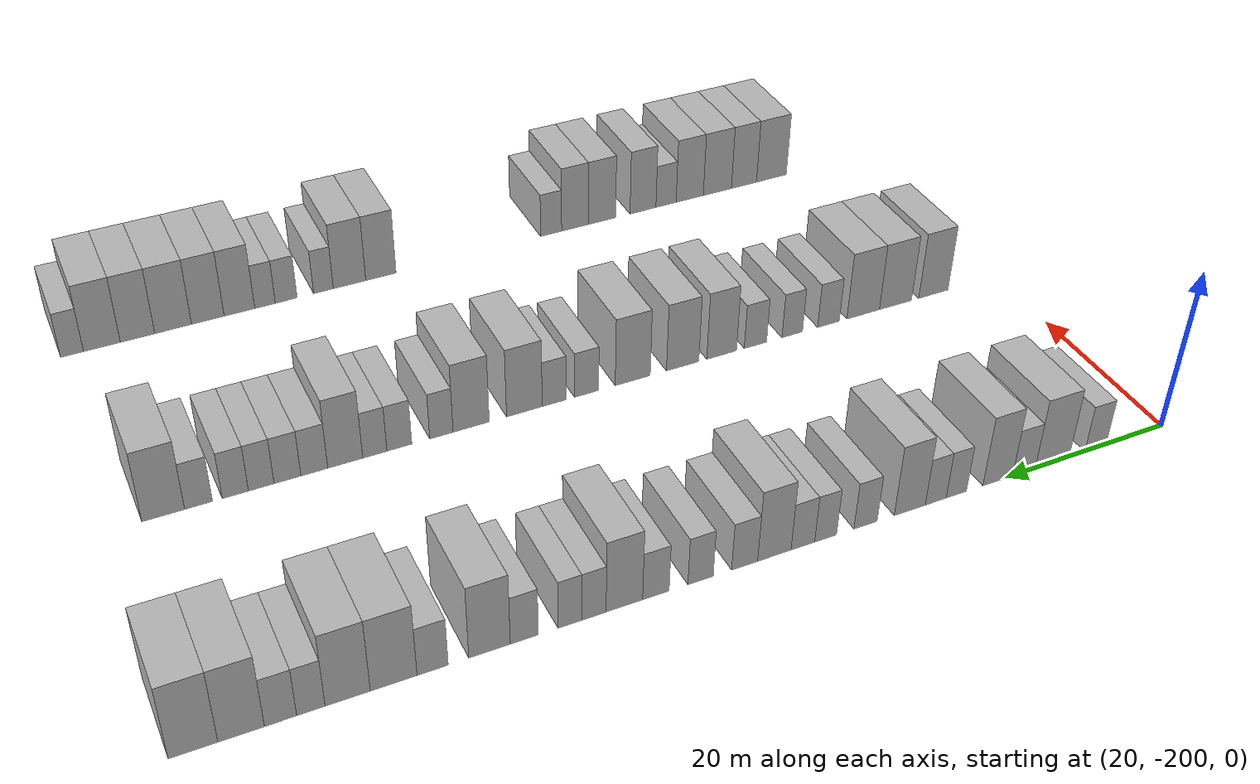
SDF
<sdf version="1.6">
 <world name="default">
  <model name="building_24">
   <static>1</static>
   <pose>25.0000 -191.3741 0 0.000000 0.000000 0.000000</pose>
   <link name="link">
    <pose>0 0 3.00 0 0 0</pose>
    <collision name="collision"><geometry><box><size>10.0000 2.7323 6.0000</size></box></geometry></collision>
    <visual name="visual">
     <cast_shadows>0</cast_shadows>
     <geometry><box><size>10.0000 2.7323 6.0000</size></box></geometry>
     <material>
      <script>
       <uri>model://HANNAS_wall/materials/scripts</uri>
       <uri>model://HANNAS_wall/materials/textures</uri>
       <name>vrc/HANNAS_wall</name>
      </script>
     </material>
    </visual>
   </link>
  </model>
  <model name="building_25">
   <static>1</static>
   <pose>25.0000 -185.8586 0 0.000000 0.000000 0.000000</pose>
   <link name="link">
    <pose>0 0 4.50 0 0 0</pose>
    <collision name="collision"><geometry><box><size>10.0000 4.2987 9.0000</size></box></geometry></collision>
    <visual name="visual">
     <cast_shadows>0</cast_shadows>
     <geometry><box><size>10.0000 4.2987 9.0000</size></box></geometry>
     <material>
      <script>
       <uri>model://HANNAS_wall/materials/scripts</uri>
       <uri>model://HANNAS_wall/materials/textures</uri>
       <name>vrc/HANNAS_wall</name>
      </script>
     </material>
    </visual>
   </link>
  </model>
  <model name="building_26">
   <static>1</static>
   <pose>25.0000 -182.3043 0 0.000000 0.000000 0.000000</pose>
   <link name="link">
    <pose>0 0 3.00 0 0 0</pose>
    <collision name="collision"><geometry><box><size>10.0000 2.8098 6.0000</size></box></geometry></collision>
    <visual name="visual">
     <cast_shadows>0</cast_shadows>
     <geometry><box><size>10.0000 2.8098 6.0000</size></box></geometry>
     <material>
      <script>
       <uri>model://HANNAS_wall/materials/scripts</uri>
       <uri>model://HANNAS_wall/materials/textures</uri>
       <name>vrc/HANNAS_wall</name>
      </script>
     </material>
    </visual>
   </link>
  </model>
  <model name="building_27">
   <static>1</static>
   <pose>25.0000 -179.0674 0 0.000000 0.000000 0.000000</pose>
   <link name="link">
    <pose>0 0 4.50 0 0 0</pose>
    <collision name="collision"><geometry><box><size>10.0000 3.6641 9.0000</size></box></geometry></collision>
    <visual name="visual">
     <cast_shadows>0</cast_shadows>
     <geometry><box><size>10.0000 3.6641 9.0000</size></box></geometry>
     <material>
      <script>
       <uri>model://HANNAS_wall/materials/scripts</uri>
       <uri>model://HANNAS_wall/materials/textures</uri>
       <name>vrc/HANNAS_wall</name>
      </script>
     </material>
    </visual>
   </link>
  </model>
  <model name="building_28">
   <static>1</static>
   <pose>25.0000 -174.0113 0 0.000000 0.000000 0.000000</pose>
   <link name="link">
    <pose>0 0 3.00 0 0 0</pose>
    <collision name="collision"><geometry><box><size>10.0000 2.4480 6.0000</size></box></geometry></collision>
    <visual name="visual">
     <cast_shadows>0</cast_shadows>
     <geometry><box><size>10.0000 2.4480 6.0000</size></box></geometry>
     <material>
      <script>
       <uri>model://HANNAS_wall/materials/scripts</uri>
       <uri>model://HANNAS_wall/materials/textures</uri>
       <name>vrc/HANNAS_wall</name>
      </script>
     </material>
    </visual>
   </link>
  </model>
  <model name="building_29">
   <static>1</static>
   <pose>25.0000 -171.5381 0 0.000000 0.000000 0.000000</pose>
   <link name="link">
    <pose>0 0 3.00 0 0 0</pose>
    <collision name="collision"><geometry><box><size>10.0000 2.4984 6.0000</size></box></geometry></collision>
    <visual name="visual">
     <cast_shadows>0</cast_shadows>
     <geometry><box><size>10.0000 2.4984 6.0000</size></box></geometry>
     <material>
      <script>
       <uri>model://HANNAS_wall/materials/scripts</uri>
       <uri>model://HANNAS_wall/materials/textures</uri>
       <name>vrc/HANNAS_wall</name>
      </script>
     </material>
    </visual>
   </link>
  </model>
  <model name="building_30">
   <static>1</static>
   <pose>25.0000 -168.4540 0 0.000000 0.000000 0.000000</pose>
   <link name="link">
    <pose>0 0 4.50 0 0 0</pose>
    <collision name="collision"><geometry><box><size>10.0000 3.6698 9.0000</size></box></geometry></collision>
    <visual name="visual">
     <cast_shadows>0</cast_shadows>
     <geometry><box><size>10.0000 3.6698 9.0000</size></box></geometry>
     <material>
      <script>
       <uri>model://HANNAS_wall/materials/scripts</uri>
       <uri>model://HANNAS_wall/materials/textures</uri>
       <name>vrc/HANNAS_wall</name>
      </script>
     </material>
    </visual>
   </link>
  </model>
  <model name="building_31">
   <static>1</static>
   <pose>25.0000 -163.2744 0 0.000000 0.000000 0.000000</pose>
   <link name="link">
    <pose>0 0 3.00 0 0 0</pose>
    <collision name="collision"><geometry><box><size>10.0000 2.6895 6.0000</size></box></geometry></collision>
    <visual name="visual">
     <cast_shadows>0</cast_shadows>
     <geometry><box><size>10.0000 2.6895 6.0000</size></box></geometry>
     <material>
      <script>
       <uri>model://HANNAS_wall/materials/scripts</uri>
       <uri>model://HANNAS_wall/materials/textures</uri>
       <name>vrc/HANNAS_wall</name>
      </script>
     </material>
    </visual>
   </link>
  </model>
  <model name="building_32">
   <static>1</static>
   <pose>25.0000 -158.6864 0 0.000000 0.000000 0.000000</pose>
   <link name="link">
    <pose>0 0 3.00 0 0 0</pose>
    <collision name="collision"><geometry><box><size>10.0000 2.4863 6.0000</size></box></geometry></collision>
    <visual name="visual">
     <cast_shadows>0</cast_shadows>
     <geometry><box><size>10.0000 2.4863 6.0000</size></box></geometry>
     <material>
      <script>
       <uri>model://HANNAS_wall/materials/scripts</uri>
       <uri>model://HANNAS_wall/materials/textures</uri>
       <name>vrc/HANNAS_wall</name>
      </script>
     </material>
    </visual>
   </link>
  </model>
  <model name="building_33">
   <static>1</static>
   <pose>25.0000 -156.1100 0 0.000000 0.000000 0.000000</pose>
   <link name="link">
    <pose>0 0 3.00 0 0 0</pose>
    <collision name="collision"><geometry><box><size>10.0000 2.6665 6.0000</size></box></geometry></collision>
    <visual name="visual">
     <cast_shadows>0</cast_shadows>
     <geometry><box><size>10.0000 2.6665 6.0000</size></box></geometry>
     <material>
      <script>
       <uri>model://HANNAS_wall/materials/scripts</uri>
       <uri>model://HANNAS_wall/materials/textures</uri>
       <name>vrc/HANNAS_wall</name>
      </script>
     </material>
    </visual>
   </link>
  </model>
  <model name="building_34">
   <static>1</static>
   <pose>25.0000 -152.9184 0 0.000000 0.000000 0.000000</pose>
   <link name="link">
    <pose>0 0 4.50 0 0 0</pose>
    <collision name="collision"><geometry><box><size>10.0000 3.7168 9.0000</size></box></geometry></collision>
    <visual name="visual">
     <cast_shadows>0</cast_shadows>
     <geometry><box><size>10.0000 3.7168 9.0000</size></box></geometry>
     <material>
      <script>
       <uri>model://HANNAS_wall/materials/scripts</uri>
       <uri>model://HANNAS_wall/materials/textures</uri>
       <name>vrc/HANNAS_wall</name>
      </script>
     </material>
    </visual>
   </link>
  </model>
  <model name="building_35">
   <static>1</static>
   <pose>25.0000 -149.6319 0 0.000000 0.000000 0.000000</pose>
   <link name="link">
    <pose>0 0 3.00 0 0 0</pose>
    <collision name="collision"><geometry><box><size>10.0000 2.8561 6.0000</size></box></geometry></collision>
    <visual name="visual">
     <cast_shadows>0</cast_shadows>
     <geometry><box><size>10.0000 2.8561 6.0000</size></box></geometry>
     <material>
      <script>
       <uri>model://HANNAS_wall/materials/scripts</uri>
       <uri>model://HANNAS_wall/materials/textures</uri>
       <name>vrc/HANNAS_wall</name>
      </script>
     </material>
    </visual>
   </link>
  </model>
  <model name="building_36">
   <static>1</static>
   <pose>25.0000 -144.8360 0 0.000000 0.000000 0.000000</pose>
   <link name="link">
    <pose>0 0 3.00 0 0 0</pose>
    <collision name="collision"><geometry><box><size>10.0000 2.7358 6.0000</size></box></geometry></collision>
    <visual name="visual">
     <cast_shadows>0</cast_shadows>
     <geometry><box><size>10.0000 2.7358 6.0000</size></box></geometry>
     <material>
      <script>
       <uri>model://HANNAS_wall/materials/scripts</uri>
       <uri>model://HANNAS_wall/materials/textures</uri>
       <name>vrc/HANNAS_wall</name>
      </script>
     </material>
    </visual>
   </link>
  </model>
  <model name="building_37">
   <static>1</static>
   <pose>25.0000 -140.0680 0 0.000000 0.000000 0.000000</pose>
   <link name="link">
    <pose>0 0 3.00 0 0 0</pose>
    <collision name="collision"><geometry><box><size>10.0000 2.8001 6.0000</size></box></geometry></collision>
    <visual name="visual">
     <cast_shadows>0</cast_shadows>
     <geometry><box><size>10.0000 2.8001 6.0000</size></box></geometry>
     <material>
      <script>
       <uri>model://HANNAS_wall/materials/scripts</uri>
       <uri>model://HANNAS_wall/materials/textures</uri>
       <name>vrc/HANNAS_wall</name>
      </script>
     </material>
    </visual>
   </link>
  </model>
  <model name="building_38">
   <static>1</static>
   <pose>25.0000 -136.7631 0 0.000000 0.000000 0.000000</pose>
   <link name="link">
    <pose>0 0 4.50 0 0 0</pose>
    <collision name="collision"><geometry><box><size>10.0000 3.8097 9.0000</size></box></geometry></collision>
    <visual name="visual">
     <cast_shadows>0</cast_shadows>
     <geometry><box><size>10.0000 3.8097 9.0000</size></box></geometry>
     <material>
      <script>
       <uri>model://HANNAS_wall/materials/scripts</uri>
       <uri>model://HANNAS_wall/materials/textures</uri>
       <name>vrc/HANNAS_wall</name>
      </script>
     </material>
    </visual>
   </link>
  </model>
  <model name="building_39">
   <static>1</static>
   <pose>25.0000 -133.6153 0 0.000000 0.000000 0.000000</pose>
   <link name="link">
    <pose>0 0 3.00 0 0 0</pose>
    <collision name="collision"><geometry><box><size>10.0000 2.4858 6.0000</size></box></geometry></collision>
    <visual name="visual">
     <cast_shadows>0</cast_shadows>
     <geometry><box><size>10.0000 2.4858 6.0000</size></box></geometry>
     <material>
      <script>
       <uri>model://HANNAS_wall/materials/scripts</uri>
       <uri>model://HANNAS_wall/materials/textures</uri>
       <name>vrc/HANNAS_wall</name>
      </script>
     </material>
    </visual>
   </link>
  </model>
  <model name="building_40">
   <static>1</static>
   <pose>25.0000 -131.1574 0 0.000000 0.000000 0.000000</pose>
   <link name="link">
    <pose>0 0 3.00 0 0 0</pose>
    <collision name="collision"><geometry><box><size>10.0000 2.4301 6.0000</size></box></geometry></collision>
    <visual name="visual">
     <cast_shadows>0</cast_shadows>
     <geometry><box><size>10.0000 2.4301 6.0000</size></box></geometry>
     <material>
      <script>
       <uri>model://HANNAS_wall/materials/scripts</uri>
       <uri>model://HANNAS_wall/materials/textures</uri>
       <name>vrc/HANNAS_wall</name>
      </script>
     </material>
    </visual>
   </link>
  </model>
  <model name="building_41">
   <static>1</static>
   <pose>25.0000 -126.5454 0 0.000000 0.000000 0.000000</pose>
   <link name="link">
    <pose>0 0 3.00 0 0 0</pose>
    <collision name="collision"><geometry><box><size>10.0000 2.7939 6.0000</size></box></geometry></collision>
    <visual name="visual">
     <cast_shadows>0</cast_shadows>
     <geometry><box><size>10.0000 2.7939 6.0000</size></box></geometry>
     <material>
      <script>
       <uri>model://HANNAS_wall/materials/scripts</uri>
       <uri>model://HANNAS_wall/materials/textures</uri>
       <name>vrc/HANNAS_wall</name>
      </script>
     </material>
    </visual>
   </link>
  </model>
  <model name="building_42">
   <static>1</static>
   <pose>25.0000 -123.1025 0 0.000000 0.000000 0.000000</pose>
   <link name="link">
    <pose>0 0 4.50 0 0 0</pose>
    <collision name="collision"><geometry><box><size>10.0000 4.0917 9.0000</size></box></geometry></collision>
    <visual name="visual">
     <cast_shadows>0</cast_shadows>
     <geometry><box><size>10.0000 4.0917 9.0000</size></box></geometry>
     <material>
      <script>
       <uri>model://HANNAS_wall/materials/scripts</uri>
       <uri>model://HANNAS_wall/materials/textures</uri>
       <name>vrc/HANNAS_wall</name>
      </script>
     </material>
    </visual>
   </link>
  </model>
  <model name="building_43">
   <static>1</static>
   <pose>25.0000 -117.5571 0 0.000000 0.000000 0.000000</pose>
   <link name="link">
    <pose>0 0 3.00 0 0 0</pose>
    <collision name="collision"><geometry><box><size>10.0000 2.9992 6.0000</size></box></geometry></collision>
    <visual name="visual">
     <cast_shadows>0</cast_shadows>
     <geometry><box><size>10.0000 2.9992 6.0000</size></box></geometry>
     <material>
      <script>
       <uri>model://HANNAS_wall/materials/scripts</uri>
       <uri>model://HANNAS_wall/materials/textures</uri>
       <name>vrc/HANNAS_wall</name>
      </script>
     </material>
    </visual>
   </link>
  </model>
  <model name="building_44">
   <static>1</static>
   <pose>25.0000 -113.8441 0 0.000000 0.000000 0.000000</pose>
   <link name="link">
    <pose>0 0 4.50 0 0 0</pose>
    <collision name="collision"><geometry><box><size>10.0000 4.4267 9.0000</size></box></geometry></collision>
    <visual name="visual">
     <cast_shadows>0</cast_shadows>
     <geometry><box><size>10.0000 4.4267 9.0000</size></box></geometry>
     <material>
      <script>
       <uri>model://HANNAS_wall/materials/scripts</uri>
       <uri>model://HANNAS_wall/materials/textures</uri>
       <name>vrc/HANNAS_wall</name>
      </script>
     </material>
    </visual>
   </link>
  </model>
  <model name="building_45">
   <static>1</static>
   <pose>25.0000 -109.5300 0 0.000000 0.000000 0.000000</pose>
   <link name="link">
    <pose>0 0 4.50 0 0 0</pose>
    <collision name="collision"><geometry><box><size>10.0000 4.2016 9.0000</size></box></geometry></collision>
    <visual name="visual">
     <cast_shadows>0</cast_shadows>
     <geometry><box><size>10.0000 4.2016 9.0000</size></box></geometry>
     <material>
      <script>
       <uri>model://HANNAS_wall/materials/scripts</uri>
       <uri>model://HANNAS_wall/materials/textures</uri>
       <name>vrc/HANNAS_wall</name>
      </script>
     </material>
    </visual>
   </link>
  </model>
  <model name="building_46">
   <static>1</static>
   <pose>25.0000 -106.1285 0 0.000000 0.000000 0.000000</pose>
   <link name="link">
    <pose>0 0 3.00 0 0 0</pose>
    <collision name="collision"><geometry><box><size>10.0000 2.6014 6.0000</size></box></geometry></collision>
    <visual name="visual">
     <cast_shadows>0</cast_shadows>
     <geometry><box><size>10.0000 2.6014 6.0000</size></box></geometry>
     <material>
      <script>
       <uri>model://HANNAS_wall/materials/scripts</uri>
       <uri>model://HANNAS_wall/materials/textures</uri>
       <name>vrc/HANNAS_wall</name>
      </script>
     </material>
    </visual>
   </link>
  </model>
  <model name="building_47">
   <static>1</static>
   <pose>25.0000 -103.3678 0 0.000000 0.000000 0.000000</pose>
   <link name="link">
    <pose>0 0 3.00 0 0 0</pose>
    <collision name="collision"><geometry><box><size>10.0000 2.9200 6.0000</size></box></geometry></collision>
    <visual name="visual">
     <cast_shadows>0</cast_shadows>
     <geometry><box><size>10.0000 2.9200 6.0000</size></box></geometry>
     <material>
      <script>
       <uri>model://HANNAS_wall/materials/scripts</uri>
       <uri>model://HANNAS_wall/materials/textures</uri>
       <name>vrc/HANNAS_wall</name>
      </script>
     </material>
    </visual>
   </link>
  </model>
  <model name="building_48">
   <static>1</static>
   <pose>25.0000 -99.8309 0 0.000000 0.000000 0.000000</pose>
   <link name="link">
    <pose>0 0 4.50 0 0 0</pose>
    <collision name="collision"><geometry><box><size>10.0000 4.1537 9.0000</size></box></geometry></collision>
    <visual name="visual">
     <cast_shadows>0</cast_shadows>
     <geometry><box><size>10.0000 4.1537 9.0000</size></box></geometry>
     <material>
      <script>
       <uri>model://HANNAS_wall/materials/scripts</uri>
       <uri>model://HANNAS_wall/materials/textures</uri>
       <name>vrc/HANNAS_wall</name>
      </script>
     </material>
    </visual>
   </link>
  </model>
  <model name="building_49">
   <static>1</static>
   <pose>25.0000 -95.5745 0 0.000000 0.000000 0.000000</pose>
   <link name="link">
    <pose>0 0 4.50 0 0 0</pose>
    <collision name="collision"><geometry><box><size>10.0000 4.3591 9.0000</size></box></geometry></collision>
    <visual name="visual">
     <cast_shadows>0</cast_shadows>
     <geometry><box><size>10.0000 4.3591 9.0000</size></box></geometry>
     <material>
      <script>
       <uri>model://HANNAS_wall/materials/scripts</uri>
       <uri>model://HANNAS_wall/materials/textures</uri>
       <name>vrc/HANNAS_wall</name>
      </script>
     </material>
    </visual>
   </link>
  </model>
  <model name="building_154">
   <static>1</static>
   <pose>55.0000 -191.2686 0 0.000000 0.000000 0.000000</pose>
   <link name="link">
    <pose>0 0 4.50 0 0 0</pose>
    <collision name="collision"><geometry><box><size>10.0000 4.0565 9.0000</size></box></geometry></collision>
    <visual name="visual">
     <cast_shadows>0</cast_shadows>
     <geometry><box><size>10.0000 4.0565 9.0000</size></box></geometry>
     <material>
      <script>
       <uri>model://HANNAS_wall/materials/scripts</uri>
       <uri>model://HANNAS_wall/materials/textures</uri>
       <name>vrc/HANNAS_wall</name>
      </script>
     </material>
    </visual>
   </link>
  </model>
  <model name="building_155">
   <static>1</static>
   <pose>55.0000 -186.0417 0 0.000000 0.000000 0.000000</pose>
   <link name="link">
    <pose>0 0 4.50 0 0 0</pose>
    <collision name="collision"><geometry><box><size>10.0000 4.3973 9.0000</size></box></geometry></collision>
    <visual name="visual">
     <cast_shadows>0</cast_shadows>
     <geometry><box><size>10.0000 4.3973 9.0000</size></box></geometry>
     <material>
      <script>
       <uri>model://HANNAS_wall/materials/scripts</uri>
       <uri>model://HANNAS_wall/materials/textures</uri>
       <name>vrc/HANNAS_wall</name>
      </script>
     </material>
    </visual>
   </link>
  </model>
  <model name="building_156">
   <static>1</static>
   <pose>55.0000 -181.6446 0 0.000000 0.000000 0.000000</pose>
   <link name="link">
    <pose>0 0 4.50 0 0 0</pose>
    <collision name="collision"><geometry><box><size>10.0000 4.3967 9.0000</size></box></geometry></collision>
    <visual name="visual">
     <cast_shadows>0</cast_shadows>
     <geometry><box><size>10.0000 4.3967 9.0000</size></box></geometry>
     <material>
      <script>
       <uri>model://HANNAS_wall/materials/scripts</uri>
       <uri>model://HANNAS_wall/materials/textures</uri>
       <name>vrc/HANNAS_wall</name>
      </script>
     </material>
    </visual>
   </link>
  </model>
  <model name="building_157">
   <static>1</static>
   <pose>55.0000 -177.0055 0 0.000000 0.000000 0.000000</pose>
   <link name="link">
    <pose>0 0 3.00 0 0 0</pose>
    <collision name="collision"><geometry><box><size>10.0000 2.8816 6.0000</size></box></geometry></collision>
    <visual name="visual">
     <cast_shadows>0</cast_shadows>
     <geometry><box><size>10.0000 2.8816 6.0000</size></box></geometry>
     <material>
      <script>
       <uri>model://HANNAS_wall/materials/scripts</uri>
       <uri>model://HANNAS_wall/materials/textures</uri>
       <name>vrc/HANNAS_wall</name>
      </script>
     </material>
    </visual>
   </link>
  </model>
  <model name="building_158">
   <static>1</static>
   <pose>55.0000 -172.2257 0 0.000000 0.000000 0.000000</pose>
   <link name="link">
    <pose>0 0 3.00 0 0 0</pose>
    <collision name="collision"><geometry><box><size>10.0000 2.6780 6.0000</size></box></geometry></collision>
    <visual name="visual">
     <cast_shadows>0</cast_shadows>
     <geometry><box><size>10.0000 2.6780 6.0000</size></box></geometry>
     <material>
      <script>
       <uri>model://HANNAS_wall/materials/scripts</uri>
       <uri>model://HANNAS_wall/materials/textures</uri>
       <name>vrc/HANNAS_wall</name>
      </script>
     </material>
    </visual>
   </link>
  </model>
  <model name="building_159">
   <static>1</static>
   <pose>55.0000 -167.4514 0 0.000000 0.000000 0.000000</pose>
   <link name="link">
    <pose>0 0 3.00 0 0 0</pose>
    <collision name="collision"><geometry><box><size>10.0000 2.8705 6.0000</size></box></geometry></collision>
    <visual name="visual">
     <cast_shadows>0</cast_shadows>
     <geometry><box><size>10.0000 2.8705 6.0000</size></box></geometry>
     <material>
      <script>
       <uri>model://HANNAS_wall/materials/scripts</uri>
       <uri>model://HANNAS_wall/materials/textures</uri>
       <name>vrc/HANNAS_wall</name>
      </script>
     </material>
    </visual>
   </link>
  </model>
  <model name="building_160">
   <static>1</static>
   <pose>55.0000 -163.1366 0 0.000000 0.000000 0.000000</pose>
   <link name="link">
    <pose>0 0 4.50 0 0 0</pose>
    <collision name="collision"><geometry><box><size>10.0000 3.7590 9.0000</size></box></geometry></collision>
    <visual name="visual">
     <cast_shadows>0</cast_shadows>
     <geometry><box><size>10.0000 3.7590 9.0000</size></box></geometry>
     <material>
      <script>
       <uri>model://HANNAS_wall/materials/scripts</uri>
       <uri>model://HANNAS_wall/materials/textures</uri>
       <name>vrc/HANNAS_wall</name>
      </script>
     </material>
    </visual>
   </link>
  </model>
  <model name="building_161">
   <static>1</static>
   <pose>55.0000 -158.2398 0 0.000000 0.000000 0.000000</pose>
   <link name="link">
    <pose>0 0 4.50 0 0 0</pose>
    <collision name="collision"><geometry><box><size>10.0000 4.0346 9.0000</size></box></geometry></collision>
    <visual name="visual">
     <cast_shadows>0</cast_shadows>
     <geometry><box><size>10.0000 4.0346 9.0000</size></box></geometry>
     <material>
      <script>
       <uri>model://HANNAS_wall/materials/scripts</uri>
       <uri>model://HANNAS_wall/materials/textures</uri>
       <name>vrc/HANNAS_wall</name>
      </script>
     </material>
    </visual>
   </link>
  </model>
  <model name="building_162">
   <static>1</static>
   <pose>55.0000 -152.0900 0 0.000000 0.000000 0.000000</pose>
   <link name="link">
    <pose>0 0 4.50 0 0 0</pose>
    <collision name="collision"><geometry><box><size>10.0000 4.2650 9.0000</size></box></geometry></collision>
    <visual name="visual">
     <cast_shadows>0</cast_shadows>
     <geometry><box><size>10.0000 4.2650 9.0000</size></box></geometry>
     <material>
      <script>
       <uri>model://HANNAS_wall/materials/scripts</uri>
       <uri>model://HANNAS_wall/materials/textures</uri>
       <name>vrc/HANNAS_wall</name>
      </script>
     </material>
    </visual>
   </link>
  </model>
  <model name="building_163">
   <static>1</static>
   <pose>55.0000 -146.5157 0 0.000000 0.000000 0.000000</pose>
   <link name="link">
    <pose>0 0 3.00 0 0 0</pose>
    <collision name="collision"><geometry><box><size>10.0000 2.8836 6.0000</size></box></geometry></collision>
    <visual name="visual">
     <cast_shadows>0</cast_shadows>
     <geometry><box><size>10.0000 2.8836 6.0000</size></box></geometry>
     <material>
      <script>
       <uri>model://HANNAS_wall/materials/scripts</uri>
       <uri>model://HANNAS_wall/materials/textures</uri>
       <name>vrc/HANNAS_wall</name>
      </script>
     </material>
    </visual>
   </link>
  </model>
  <model name="building_164">
   <static>1</static>
   <pose>55.0000 -142.6674 0 0.000000 0.000000 0.000000</pose>
   <link name="link">
    <pose>0 0 3.00 0 0 0</pose>
    <collision name="collision"><geometry><box><size>10.0000 2.8130 6.0000</size></box></geometry></collision>
    <visual name="visual">
     <cast_shadows>0</cast_shadows>
     <geometry><box><size>10.0000 2.8130 6.0000</size></box></geometry>
     <material>
      <script>
       <uri>model://HANNAS_wall/materials/scripts</uri>
       <uri>model://HANNAS_wall/materials/textures</uri>
       <name>vrc/HANNAS_wall</name>
      </script>
     </material>
    </visual>
   </link>
  </model>
  <model name="building_165">
   <static>1</static>
   <pose>55.0000 -139.1815 0 0.000000 0.000000 0.000000</pose>
   <link name="link">
    <pose>0 0 4.50 0 0 0</pose>
    <collision name="collision"><geometry><box><size>10.0000 4.1588 9.0000</size></box></geometry></collision>
    <visual name="visual">
     <cast_shadows>0</cast_shadows>
     <geometry><box><size>10.0000 4.1588 9.0000</size></box></geometry>
     <material>
      <script>
       <uri>model://HANNAS_wall/materials/scripts</uri>
       <uri>model://HANNAS_wall/materials/textures</uri>
       <name>vrc/HANNAS_wall</name>
      </script>
     </material>
    </visual>
   </link>
  </model>
  <model name="building_166">
   <static>1</static>
   <pose>55.0000 -133.0442 0 0.000000 0.000000 0.000000</pose>
   <link name="link">
    <pose>0 0 4.50 0 0 0</pose>
    <collision name="collision"><geometry><box><size>10.0000 4.1156 9.0000</size></box></geometry></collision>
    <visual name="visual">
     <cast_shadows>0</cast_shadows>
     <geometry><box><size>10.0000 4.1156 9.0000</size></box></geometry>
     <material>
      <script>
       <uri>model://HANNAS_wall/materials/scripts</uri>
       <uri>model://HANNAS_wall/materials/textures</uri>
       <name>vrc/HANNAS_wall</name>
      </script>
     </material>
    </visual>
   </link>
  </model>
  <model name="building_167">
   <static>1</static>
   <pose>55.0000 -129.6721 0 0.000000 0.000000 0.000000</pose>
   <link name="link">
    <pose>0 0 3.00 0 0 0</pose>
    <collision name="collision"><geometry><box><size>10.0000 2.6286 6.0000</size></box></geometry></collision>
    <visual name="visual">
     <cast_shadows>0</cast_shadows>
     <geometry><box><size>10.0000 2.6286 6.0000</size></box></geometry>
     <material>
      <script>
       <uri>model://HANNAS_wall/materials/scripts</uri>
       <uri>model://HANNAS_wall/materials/textures</uri>
       <name>vrc/HANNAS_wall</name>
      </script>
     </material>
    </visual>
   </link>
  </model>
  <model name="building_168">
   <static>1</static>
   <pose>55.0000 -124.9815 0 0.000000 0.000000 0.000000</pose>
   <link name="link">
    <pose>0 0 3.00 0 0 0</pose>
    <collision name="collision"><geometry><box><size>10.0000 2.7528 6.0000</size></box></geometry></collision>
    <visual name="visual">
     <cast_shadows>0</cast_shadows>
     <geometry><box><size>10.0000 2.7528 6.0000</size></box></geometry>
     <material>
      <script>
       <uri>model://HANNAS_wall/materials/scripts</uri>
       <uri>model://HANNAS_wall/materials/textures</uri>
       <name>vrc/HANNAS_wall</name>
      </script>
     </material>
    </visual>
   </link>
  </model>
  <model name="building_169">
   <static>1</static>
   <pose>55.0000 -122.2796 0 0.000000 0.000000 0.000000</pose>
   <link name="link">
    <pose>0 0 3.00 0 0 0</pose>
    <collision name="collision"><geometry><box><size>10.0000 2.6510 6.0000</size></box></geometry></collision>
    <visual name="visual">
     <cast_shadows>0</cast_shadows>
     <geometry><box><size>10.0000 2.6510 6.0000</size></box></geometry>
     <material>
      <script>
       <uri>model://HANNAS_wall/materials/scripts</uri>
       <uri>model://HANNAS_wall/materials/textures</uri>
       <name>vrc/HANNAS_wall</name>
      </script>
     </material>
    </visual>
   </link>
  </model>
  <model name="building_170">
   <static>1</static>
   <pose>55.0000 -119.0619 0 0.000000 0.000000 0.000000</pose>
   <link name="link">
    <pose>0 0 4.50 0 0 0</pose>
    <collision name="collision"><geometry><box><size>10.0000 3.7846 9.0000</size></box></geometry></collision>
    <visual name="visual">
     <cast_shadows>0</cast_shadows>
     <geometry><box><size>10.0000 3.7846 9.0000</size></box></geometry>
     <material>
      <script>
       <uri>model://HANNAS_wall/materials/scripts</uri>
       <uri>model://HANNAS_wall/materials/textures</uri>
       <name>vrc/HANNAS_wall</name>
      </script>
     </material>
    </visual>
   </link>
  </model>
  <model name="building_171">
   <static>1</static>
   <pose>55.0000 -115.7327 0 0.000000 0.000000 0.000000</pose>
   <link name="link">
    <pose>0 0 3.00 0 0 0</pose>
    <collision name="collision"><geometry><box><size>10.0000 2.8738 6.0000</size></box></geometry></collision>
    <visual name="visual">
     <cast_shadows>0</cast_shadows>
     <geometry><box><size>10.0000 2.8738 6.0000</size></box></geometry>
     <material>
      <script>
       <uri>model://HANNAS_wall/materials/scripts</uri>
       <uri>model://HANNAS_wall/materials/textures</uri>
       <name>vrc/HANNAS_wall</name>
      </script>
     </material>
    </visual>
   </link>
  </model>
  <model name="building_172">
   <static>1</static>
   <pose>55.0000 -112.8750 0 0.000000 0.000000 0.000000</pose>
   <link name="link">
    <pose>0 0 3.00 0 0 0</pose>
    <collision name="collision"><geometry><box><size>10.0000 2.8415 6.0000</size></box></geometry></collision>
    <visual name="visual">
     <cast_shadows>0</cast_shadows>
     <geometry><box><size>10.0000 2.8415 6.0000</size></box></geometry>
     <material>
      <script>
       <uri>model://HANNAS_wall/materials/scripts</uri>
       <uri>model://HANNAS_wall/materials/textures</uri>
       <name>vrc/HANNAS_wall</name>
      </script>
     </material>
    </visual>
   </link>
  </model>
  <model name="building_173">
   <static>1</static>
   <pose>55.0000 -110.1168 0 0.000000 0.000000 0.000000</pose>
   <link name="link">
    <pose>0 0 3.00 0 0 0</pose>
    <collision name="collision"><geometry><box><size>10.0000 2.6749 6.0000</size></box></geometry></collision>
    <visual name="visual">
     <cast_shadows>0</cast_shadows>
     <geometry><box><size>10.0000 2.6749 6.0000</size></box></geometry>
     <material>
      <script>
       <uri>model://HANNAS_wall/materials/scripts</uri>
       <uri>model://HANNAS_wall/materials/textures</uri>
       <name>vrc/HANNAS_wall</name>
      </script>
     </material>
    </visual>
   </link>
  </model>
  <model name="building_174">
   <static>1</static>
   <pose>55.0000 -107.4191 0 0.000000 0.000000 0.000000</pose>
   <link name="link">
    <pose>0 0 3.00 0 0 0</pose>
    <collision name="collision"><geometry><box><size>10.0000 2.7206 6.0000</size></box></geometry></collision>
    <visual name="visual">
     <cast_shadows>0</cast_shadows>
     <geometry><box><size>10.0000 2.7206 6.0000</size></box></geometry>
     <material>
      <script>
       <uri>model://HANNAS_wall/materials/scripts</uri>
       <uri>model://HANNAS_wall/materials/textures</uri>
       <name>vrc/HANNAS_wall</name>
      </script>
     </material>
    </visual>
   </link>
  </model>
  <model name="building_175">
   <static>1</static>
   <pose>55.0000 -103.6370 0 0.000000 0.000000 0.000000</pose>
   <link name="link">
    <pose>0 0 3.00 0 0 0</pose>
    <collision name="collision"><geometry><box><size>10.0000 2.8435 6.0000</size></box></geometry></collision>
    <visual name="visual">
     <cast_shadows>0</cast_shadows>
     <geometry><box><size>10.0000 2.8435 6.0000</size></box></geometry>
     <material>
      <script>
       <uri>model://HANNAS_wall/materials/scripts</uri>
       <uri>model://HANNAS_wall/materials/textures</uri>
       <name>vrc/HANNAS_wall</name>
      </script>
     </material>
    </visual>
   </link>
  </model>
  <model name="building_176">
   <static>1</static>
   <pose>55.0000 -100.0533 0 0.000000 0.000000 0.000000</pose>
   <link name="link">
    <pose>0 0 4.50 0 0 0</pose>
    <collision name="collision"><geometry><box><size>10.0000 4.3238 9.0000</size></box></geometry></collision>
    <visual name="visual">
     <cast_shadows>0</cast_shadows>
     <geometry><box><size>10.0000 4.3238 9.0000</size></box></geometry>
     <material>
      <script>
       <uri>model://HANNAS_wall/materials/scripts</uri>
       <uri>model://HANNAS_wall/materials/textures</uri>
       <name>vrc/HANNAS_wall</name>
      </script>
     </material>
    </visual>
   </link>
  </model>
  <model name="building_303">
   <static>1</static>
   <pose>85.0000 -186.4450 0 0.000000 0.000000 0.000000</pose>
   <link name="link">
    <pose>0 0 4.50 0 0 0</pose>
    <collision name="collision"><geometry><box><size>10.0000 4.4016 9.0000</size></box></geometry></collision>
    <visual name="visual">
     <cast_shadows>0</cast_shadows>
     <geometry><box><size>10.0000 4.4016 9.0000</size></box></geometry>
     <material>
      <script>
       <uri>model://HANNAS_wall/materials/scripts</uri>
       <uri>model://HANNAS_wall/materials/textures</uri>
       <name>vrc/HANNAS_wall</name>
      </script>
     </material>
    </visual>
   </link>
  </model>
  <model name="building_304">
   <static>1</static>
   <pose>85.0000 -182.4093 0 0.000000 0.000000 0.000000</pose>
   <link name="link">
    <pose>0 0 4.50 0 0 0</pose>
    <collision name="collision"><geometry><box><size>10.0000 3.6697 9.0000</size></box></geometry></collision>
    <visual name="visual">
     <cast_shadows>0</cast_shadows>
     <geometry><box><size>10.0000 3.6697 9.0000</size></box></geometry>
     <material>
      <script>
       <uri>model://HANNAS_wall/materials/scripts</uri>
       <uri>model://HANNAS_wall/materials/textures</uri>
       <name>vrc/HANNAS_wall</name>
      </script>
     </material>
    </visual>
   </link>
  </model>
  <model name="building_305">
   <static>1</static>
   <pose>85.0000 -178.5460 0 0.000000 0.000000 0.000000</pose>
   <link name="link">
    <pose>0 0 4.50 0 0 0</pose>
    <collision name="collision"><geometry><box><size>10.0000 4.0568 9.0000</size></box></geometry></collision>
    <visual name="visual">
     <cast_shadows>0</cast_shadows>
     <geometry><box><size>10.0000 4.0568 9.0000</size></box></geometry>
     <material>
      <script>
       <uri>model://HANNAS_wall/materials/scripts</uri>
       <uri>model://HANNAS_wall/materials/textures</uri>
       <name>vrc/HANNAS_wall</name>
      </script>
     </material>
    </visual>
   </link>
  </model>
  <model name="building_306">
   <static>1</static>
   <pose>85.0000 -174.5756 0 0.000000 0.000000 0.000000</pose>
   <link name="link">
    <pose>0 0 4.50 0 0 0</pose>
    <collision name="collision"><geometry><box><size>10.0000 3.8841 9.0000</size></box></geometry></collision>
    <visual name="visual">
     <cast_shadows>0</cast_shadows>
     <geometry><box><size>10.0000 3.8841 9.0000</size></box></geometry>
     <material>
      <script>
       <uri>model://HANNAS_wall/materials/scripts</uri>
       <uri>model://HANNAS_wall/materials/textures</uri>
       <name>vrc/HANNAS_wall</name>
      </script>
     </material>
    </visual>
   </link>
  </model>
  <model name="building_307">
   <static>1</static>
   <pose>85.0000 -171.2085 0 0.000000 0.000000 0.000000</pose>
   <link name="link">
    <pose>0 0 3.00 0 0 0</pose>
    <collision name="collision"><geometry><box><size>10.0000 2.8500 6.0000</size></box></geometry></collision>
    <visual name="visual">
     <cast_shadows>0</cast_shadows>
     <geometry><box><size>10.0000 2.8500 6.0000</size></box></geometry>
     <material>
      <script>
       <uri>model://HANNAS_wall/materials/scripts</uri>
       <uri>model://HANNAS_wall/materials/textures</uri>
       <name>vrc/HANNAS_wall</name>
      </script>
     </material>
    </visual>
   </link>
  </model>
  <model name="building_308">
   <static>1</static>
   <pose>85.0000 -167.9722 0 0.000000 0.000000 0.000000</pose>
   <link name="link">
    <pose>0 0 4.50 0 0 0</pose>
    <collision name="collision"><geometry><box><size>10.0000 3.6227 9.0000</size></box></geometry></collision>
    <visual name="visual">
     <cast_shadows>0</cast_shadows>
     <geometry><box><size>10.0000 3.6227 9.0000</size></box></geometry>
     <material>
      <script>
       <uri>model://HANNAS_wall/materials/scripts</uri>
       <uri>model://HANNAS_wall/materials/textures</uri>
       <name>vrc/HANNAS_wall</name>
      </script>
     </material>
    </visual>
   </link>
  </model>
  <model name="building_309">
   <static>1</static>
   <pose>85.0000 -162.2863 0 0.000000 0.000000 0.000000</pose>
   <link name="link">
    <pose>0 0 4.50 0 0 0</pose>
    <collision name="collision"><geometry><box><size>10.0000 3.7489 9.0000</size></box></geometry></collision>
    <visual name="visual">
     <cast_shadows>0</cast_shadows>
     <geometry><box><size>10.0000 3.7489 9.0000</size></box></geometry>
     <material>
      <script>
       <uri>model://HANNAS_wall/materials/scripts</uri>
       <uri>model://HANNAS_wall/materials/textures</uri>
       <name>vrc/HANNAS_wall</name>
      </script>
     </material>
    </visual>
   </link>
  </model>
  <model name="building_310">
   <static>1</static>
   <pose>85.0000 -158.6023 0 0.000000 0.000000 0.000000</pose>
   <link name="link">
    <pose>0 0 4.50 0 0 0</pose>
    <collision name="collision"><geometry><box><size>10.0000 3.6191 9.0000</size></box></geometry></collision>
    <visual name="visual">
     <cast_shadows>0</cast_shadows>
     <geometry><box><size>10.0000 3.6191 9.0000</size></box></geometry>
     <material>
      <script>
       <uri>model://HANNAS_wall/materials/scripts</uri>
       <uri>model://HANNAS_wall/materials/textures</uri>
       <name>vrc/HANNAS_wall</name>
      </script>
     </material>
    </visual>
   </link>
  </model>
  <model name="building_311">
   <static>1</static>
   <pose>85.0000 -155.3800 0 0.000000 0.000000 0.000000</pose>
   <link name="link">
    <pose>0 0 3.00 0 0 0</pose>
    <collision name="collision"><geometry><box><size>10.0000 2.8255 6.0000</size></box></geometry></collision>
    <visual name="visual">
     <cast_shadows>0</cast_shadows>
     <geometry><box><size>10.0000 2.8255 6.0000</size></box></geometry>
     <material>
      <script>
       <uri>model://HANNAS_wall/materials/scripts</uri>
       <uri>model://HANNAS_wall/materials/textures</uri>
       <name>vrc/HANNAS_wall</name>
      </script>
     </material>
    </visual>
   </link>
  </model>
  <model name="building_312">
   <static>1</static>
   <pose>85.0000 -133.2664 0 0.000000 0.000000 0.000000</pose>
   <link name="link">
    <pose>0 0 4.50 0 0 0</pose>
    <collision name="collision"><geometry><box><size>10.0000 3.8006 9.0000</size></box></geometry></collision>
    <visual name="visual">
     <cast_shadows>0</cast_shadows>
     <geometry><box><size>10.0000 3.8006 9.0000</size></box></geometry>
     <material>
      <script>
       <uri>model://HANNAS_wall/materials/scripts</uri>
       <uri>model://HANNAS_wall/materials/textures</uri>
       <name>vrc/HANNAS_wall</name>
      </script>
     </material>
    </visual>
   </link>
  </model>
  <model name="building_313">
   <static>1</static>
   <pose>85.0000 -129.3570 0 0.000000 0.000000 0.000000</pose>
   <link name="link">
    <pose>0 0 4.50 0 0 0</pose>
    <collision name="collision"><geometry><box><size>10.0000 4.0182 9.0000</size></box></geometry></collision>
    <visual name="visual">
     <cast_shadows>0</cast_shadows>
     <geometry><box><size>10.0000 4.0182 9.0000</size></box></geometry>
     <material>
      <script>
       <uri>model://HANNAS_wall/materials/scripts</uri>
       <uri>model://HANNAS_wall/materials/textures</uri>
       <name>vrc/HANNAS_wall</name>
      </script>
     </material>
    </visual>
   </link>
  </model>
  <model name="building_314">
   <static>1</static>
   <pose>85.0000 -126.1382 0 0.000000 0.000000 0.000000</pose>
   <link name="link">
    <pose>0 0 3.00 0 0 0</pose>
    <collision name="collision"><geometry><box><size>10.0000 2.4195 6.0000</size></box></geometry></collision>
    <visual name="visual">
     <cast_shadows>0</cast_shadows>
     <geometry><box><size>10.0000 2.4195 6.0000</size></box></geometry>
     <material>
      <script>
       <uri>model://HANNAS_wall/materials/scripts</uri>
       <uri>model://HANNAS_wall/materials/textures</uri>
       <name>vrc/HANNAS_wall</name>
      </script>
     </material>
    </visual>
   </link>
  </model>
  <model name="building_315">
   <static>1</static>
   <pose>85.0000 -121.6101 0 0.000000 0.000000 0.000000</pose>
   <link name="link">
    <pose>0 0 3.00 0 0 0</pose>
    <collision name="collision"><geometry><box><size>10.0000 2.6367 6.0000</size></box></geometry></collision>
    <visual name="visual">
     <cast_shadows>0</cast_shadows>
     <geometry><box><size>10.0000 2.6367 6.0000</size></box></geometry>
     <material>
      <script>
       <uri>model://HANNAS_wall/materials/scripts</uri>
       <uri>model://HANNAS_wall/materials/textures</uri>
       <name>vrc/HANNAS_wall</name>
      </script>
     </material>
    </visual>
   </link>
  </model>
  <model name="building_316">
   <static>1</static>
   <pose>85.0000 -119.0634 0 0.000000 0.000000 0.000000</pose>
   <link name="link">
    <pose>0 0 3.00 0 0 0</pose>
    <collision name="collision"><geometry><box><size>10.0000 2.4567 6.0000</size></box></geometry></collision>
    <visual name="visual">
     <cast_shadows>0</cast_shadows>
     <geometry><box><size>10.0000 2.4567 6.0000</size></box></geometry>
     <material>
      <script>
       <uri>model://HANNAS_wall/materials/scripts</uri>
       <uri>model://HANNAS_wall/materials/textures</uri>
       <name>vrc/HANNAS_wall</name>
      </script>
     </material>
    </visual>
   </link>
  </model>
  <model name="building_317">
   <static>1</static>
   <pose>85.0000 -116.0183 0 0.000000 0.000000 0.000000</pose>
   <link name="link">
    <pose>0 0 4.50 0 0 0</pose>
    <collision name="collision"><geometry><box><size>10.0000 3.6334 9.0000</size></box></geometry></collision>
    <visual name="visual">
     <cast_shadows>0</cast_shadows>
     <geometry><box><size>10.0000 3.6334 9.0000</size></box></geometry>
     <material>
      <script>
       <uri>model://HANNAS_wall/materials/scripts</uri>
       <uri>model://HANNAS_wall/materials/textures</uri>
       <name>vrc/HANNAS_wall</name>
      </script>
     </material>
    </visual>
   </link>
  </model>
  <model name="building_318">
   <static>1</static>
   <pose>85.0000 -112.2932 0 0.000000 0.000000 0.000000</pose>
   <link name="link">
    <pose>0 0 4.50 0 0 0</pose>
    <collision name="collision"><geometry><box><size>10.0000 3.8170 9.0000</size></box></geometry></collision>
    <visual name="visual">
     <cast_shadows>0</cast_shadows>
     <geometry><box><size>10.0000 3.8170 9.0000</size></box></geometry>
     <material>
      <script>
       <uri>model://HANNAS_wall/materials/scripts</uri>
       <uri>model://HANNAS_wall/materials/textures</uri>
       <name>vrc/HANNAS_wall</name>
      </script>
     </material>
    </visual>
   </link>
  </model>
  <model name="building_319">
   <static>1</static>
   <pose>85.0000 -108.2614 0 0.000000 0.000000 0.000000</pose>
   <link name="link">
    <pose>0 0 4.50 0 0 0</pose>
    <collision name="collision"><geometry><box><size>10.0000 4.2465 9.0000</size></box></geometry></collision>
    <visual name="visual">
     <cast_shadows>0</cast_shadows>
     <geometry><box><size>10.0000 4.2465 9.0000</size></box></geometry>
     <material>
      <script>
       <uri>model://HANNAS_wall/materials/scripts</uri>
       <uri>model://HANNAS_wall/materials/textures</uri>
       <name>vrc/HANNAS_wall</name>
      </script>
     </material>
    </visual>
   </link>
  </model>
  <model name="building_320">
   <static>1</static>
   <pose>85.0000 -104.1796 0 0.000000 0.000000 0.000000</pose>
   <link name="link">
    <pose>0 0 4.50 0 0 0</pose>
    <collision name="collision"><geometry><box><size>10.0000 3.9171 9.0000</size></box></geometry></collision>
    <visual name="visual">
     <cast_shadows>0</cast_shadows>
     <geometry><box><size>10.0000 3.9171 9.0000</size></box></geometry>
     <material>
      <script>
       <uri>model://HANNAS_wall/materials/scripts</uri>
       <uri>model://HANNAS_wall/materials/textures</uri>
       <name>vrc/HANNAS_wall</name>
      </script>
     </material>
    </visual>
   </link>
  </model>
  <model name="building_321">
   <static>1</static>
   <pose>85.0000 -100.1564 0 0.000000 0.000000 0.000000</pose>
   <link name="link">
    <pose>0 0 4.50 0 0 0</pose>
    <collision name="collision"><geometry><box><size>10.0000 4.1292 9.0000</size></box></geometry></collision>
    <visual name="visual">
     <cast_shadows>0</cast_shadows>
     <geometry><box><size>10.0000 4.1292 9.0000</size></box></geometry>
     <material>
      <script>
       <uri>model://HANNAS_wall/materials/scripts</uri>
       <uri>model://HANNAS_wall/materials/textures</uri>
       <name>vrc/HANNAS_wall</name>
      </script>
     </material>
    </visual>
   </link>
  </model>
  <model name="building_322">
   <static>1</static>
   <pose>85.0000 -96.8110 0 0.000000 0.000000 0.000000</pose>
   <link name="link">
    <pose>0 0 3.00 0 0 0</pose>
    <collision name="collision"><geometry><box><size>10.0000 2.5617 6.0000</size></box></geometry></collision>
    <visual name="visual">
     <cast_shadows>0</cast_shadows>
     <geometry><box><size>10.0000 2.5617 6.0000</size></box></geometry>
     <material>
      <script>
       <uri>model://HANNAS_wall/materials/scripts</uri>
       <uri>model://HANNAS_wall/materials/textures</uri>
       <name>vrc/HANNAS_wall</name>
      </script>
     </material>
    </visual>
   </link>
  </model>
 </world>
</sdf>
